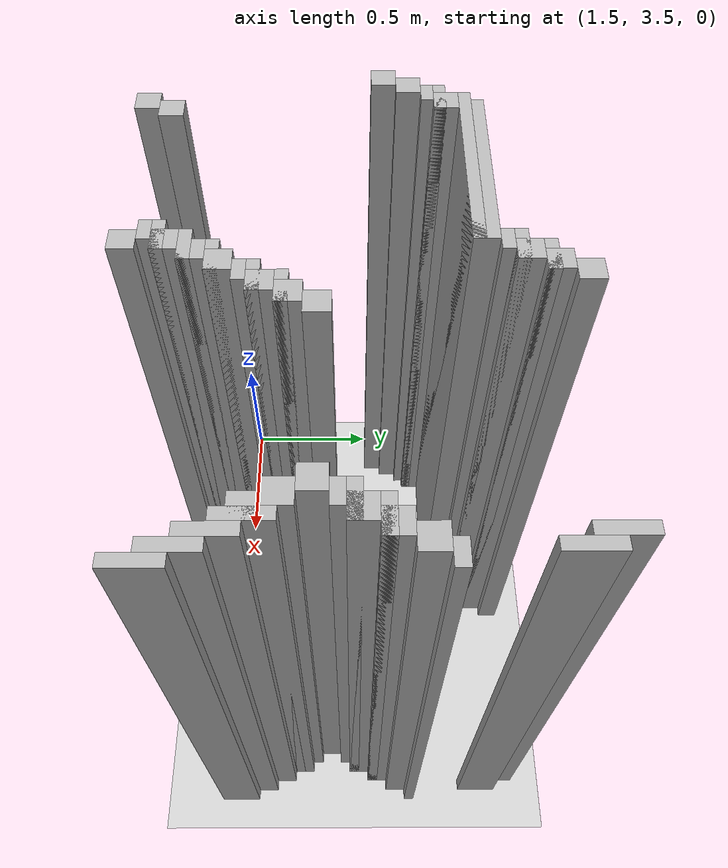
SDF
<sdf version="1.6">
 <world name="slam_world">
  <model name="ground_plane">
   <static>true</static>
   <link name="link">
    <collision name="collision">
     <geometry><plane><normal>0 0 1</normal><size>100 100</size></plane></geometry>
    </collision>
    <visual name="visual">
     <geometry><plane><normal>0 0 1</normal><size>100 100</size></plane></geometry>
     <material>
      <ambient>0.8 0.8 0.8 1</ambient>
      <diffuse>0.8 0.8 0.8 1</diffuse>
      <specular>0.8 0.8 0.8 1</specular>
     </material>
    </visual>
   </link>
  </model>
  <model name="wall_4282">
   <static>true</static>
   <pose>2.4013921113689096 4.524361948955916 1.0 0 0 0</pose>
   <link name="link">
    <collision name="collision">
     <geometry><box><size>0.06960556844547564 0.06960556844547564 2.0</size></box></geometry>
    </collision>
    <visual name="visual">
     <geometry><box><size>0.06960556844547564 0.06960556844547564 2.0</size></box></geometry>
     <material><ambient>0.5 0.5 0.5 1</ambient><diffuse>0.7 0.7 0.7 1</diffuse></material>
    </visual>
   </link>
  </model>
  <model name="wall_4283">
   <static>true</static>
   <pose>3.1148491879350346 4.489559164733178 1.0 0 0 0</pose>
   <link name="link">
    <collision name="collision">
     <geometry><box><size>0.03480278422273782 0.13921113689095127 2.0</size></box></geometry>
    </collision>
    <visual name="visual">
     <geometry><box><size>0.03480278422273782 0.13921113689095127 2.0</size></box></geometry>
     <material><ambient>0.5 0.5 0.5 1</ambient><diffuse>0.7 0.7 0.7 1</diffuse></material>
    </visual>
   </link>
  </model>
  <model name="wall_4293">
   <static>true</static>
   <pose>2.3665893271461718 4.454756380510441 1.0 0 0 0</pose>
   <link name="link">
    <collision name="collision">
     <geometry><box><size>0.06960556844547564 0.06960556844547564 2.0</size></box></geometry>
    </collision>
    <visual name="visual">
     <geometry><box><size>0.06960556844547564 0.06960556844547564 2.0</size></box></geometry>
     <material><ambient>0.5 0.5 0.5 1</ambient><diffuse>0.7 0.7 0.7 1</diffuse></material>
    </visual>
   </link>
  </model>
  <model name="wall_4294">
   <static>true</static>
   <pose>3.1496519721577725 4.419953596287703 1.0 0 0 0</pose>
   <link name="link">
    <collision name="collision">
     <geometry><box><size>0.03480278422273782 0.13921113689095127 2.0</size></box></geometry>
    </collision>
    <visual name="visual">
     <geometry><box><size>0.03480278422273782 0.13921113689095127 2.0</size></box></geometry>
     <material><ambient>0.5 0.5 0.5 1</ambient><diffuse>0.7 0.7 0.7 1</diffuse></material>
    </visual>
   </link>
  </model>
  <model name="wall_4304">
   <static>true</static>
   <pose>2.3491879350348026 4.437354988399072 1.0 0 0 0</pose>
   <link name="link">
    <collision name="collision">
     <geometry><box><size>0.10440835266821345 0.03480278422273782 2.0</size></box></geometry>
    </collision>
    <visual name="visual">
     <geometry><box><size>0.10440835266821345 0.03480278422273782 2.0</size></box></geometry>
     <material><ambient>0.5 0.5 0.5 1</ambient><diffuse>0.7 0.7 0.7 1</diffuse></material>
    </visual>
   </link>
  </model>
  <model name="wall_4314">
   <static>true</static>
   <pose>2.331786542923434 4.385150812064965 1.0 0 0 0</pose>
   <link name="link">
    <collision name="collision">
     <geometry><box><size>0.06960556844547564 0.06960556844547564 2.0</size></box></geometry>
    </collision>
    <visual name="visual">
     <geometry><box><size>0.06960556844547564 0.06960556844547564 2.0</size></box></geometry>
     <material><ambient>0.5 0.5 0.5 1</ambient><diffuse>0.7 0.7 0.7 1</diffuse></material>
    </visual>
   </link>
  </model>
  <model name="wall_4319">
   <static>true</static>
   <pose>2.3143851508120648 4.367749419953596 1.0 0 0 0</pose>
   <link name="link">
    <collision name="collision">
     <geometry><box><size>0.10440835266821345 0.03480278422273782 2.0</size></box></geometry>
    </collision>
    <visual name="visual">
     <geometry><box><size>0.10440835266821345 0.03480278422273782 2.0</size></box></geometry>
     <material><ambient>0.5 0.5 0.5 1</ambient><diffuse>0.7 0.7 0.7 1</diffuse></material>
    </visual>
   </link>
  </model>
  <model name="wall_4329">
   <static>true</static>
   <pose>2.296983758700696 4.332946635730858 1.0 0 0 0</pose>
   <link name="link">
    <collision name="collision">
     <geometry><box><size>0.06960556844547564 0.03480278422273782 2.0</size></box></geometry>
    </collision>
    <visual name="visual">
     <geometry><box><size>0.06960556844547564 0.03480278422273782 2.0</size></box></geometry>
     <material><ambient>0.5 0.5 0.5 1</ambient><diffuse>0.7 0.7 0.7 1</diffuse></material>
    </visual>
   </link>
  </model>
  <model name="wall_4335">
   <static>true</static>
   <pose>2.0185614849187936 4.280742459396752 1.0 0 0 0</pose>
   <link name="link">
    <collision name="collision">
     <geometry><box><size>0.5568445475638051 0.06960556844547564 2.0</size></box></geometry>
    </collision>
    <visual name="visual">
     <geometry><box><size>0.5568445475638051 0.06960556844547564 2.0</size></box></geometry>
     <material><ambient>0.5 0.5 0.5 1</ambient><diffuse>0.7 0.7 0.7 1</diffuse></material>
    </visual>
   </link>
  </model>
  <model name="wall_4347">
   <static>true</static>
   <pose>2.0011600928074245 4.263341067285383 1.0 0 0 0</pose>
   <link name="link">
    <collision name="collision">
     <geometry><box><size>0.5916473317865429 0.03480278422273782 2.0</size></box></geometry>
    </collision>
    <visual name="visual">
     <geometry><box><size>0.5916473317865429 0.03480278422273782 2.0</size></box></geometry>
     <material><ambient>0.5 0.5 0.5 1</ambient><diffuse>0.7 0.7 0.7 1</diffuse></material>
    </visual>
   </link>
  </model>
  <model name="wall_4359">
   <static>true</static>
   <pose>1.740139211136891 4.211136890951276 1.0 0 0 0</pose>
   <link name="link">
    <collision name="collision">
     <geometry><box><size>0.06960556844547564 0.06960556844547564 2.0</size></box></geometry>
    </collision>
    <visual name="visual">
     <geometry><box><size>0.06960556844547564 0.06960556844547564 2.0</size></box></geometry>
     <material><ambient>0.5 0.5 0.5 1</ambient><diffuse>0.7 0.7 0.7 1</diffuse></material>
    </visual>
   </link>
  </model>
  <model name="wall_4375">
   <static>true</static>
   <pose>1.722737819025522 4.193735498839907 1.0 0 0 0</pose>
   <link name="link">
    <collision name="collision">
     <geometry><box><size>0.10440835266821345 0.03480278422273782 2.0</size></box></geometry>
    </collision>
    <visual name="visual">
     <geometry><box><size>0.10440835266821345 0.03480278422273782 2.0</size></box></geometry>
     <material><ambient>0.5 0.5 0.5 1</ambient><diffuse>0.7 0.7 0.7 1</diffuse></material>
    </visual>
   </link>
  </model>
  <model name="wall_4390">
   <static>true</static>
   <pose>1.705336426914153 4.158932714617169 1.0 0 0 0</pose>
   <link name="link">
    <collision name="collision">
     <geometry><box><size>0.06960556844547564 0.03480278422273782 2.0</size></box></geometry>
    </collision>
    <visual name="visual">
     <geometry><box><size>0.06960556844547564 0.03480278422273782 2.0</size></box></geometry>
     <material><ambient>0.5 0.5 0.5 1</ambient><diffuse>0.7 0.7 0.7 1</diffuse></material>
    </visual>
   </link>
  </model>
  <model name="wall_4391">
   <static>true</static>
   <pose>3.167053364269141 4.158932714617169 1.0 0 0 0</pose>
   <link name="link">
    <collision name="collision">
     <geometry><box><size>0.06960556844547564 0.03480278422273782 2.0</size></box></geometry>
    </collision>
    <visual name="visual">
     <geometry><box><size>0.06960556844547564 0.03480278422273782 2.0</size></box></geometry>
     <material><ambient>0.5 0.5 0.5 1</ambient><diffuse>0.7 0.7 0.7 1</diffuse></material>
    </visual>
   </link>
  </model>
  <model name="wall_4404">
   <static>true</static>
   <pose>1.6705336426914152 4.106728538283062 1.0 0 0 0</pose>
   <link name="link">
    <collision name="collision">
     <geometry><box><size>0.06960556844547564 0.06960556844547564 2.0</size></box></geometry>
    </collision>
    <visual name="visual">
     <geometry><box><size>0.06960556844547564 0.06960556844547564 2.0</size></box></geometry>
     <material><ambient>0.5 0.5 0.5 1</ambient><diffuse>0.7 0.7 0.7 1</diffuse></material>
    </visual>
   </link>
  </model>
  <model name="wall_4405">
   <static>true</static>
   <pose>3.1322505800464038 4.106728538283062 1.0 0 0 0</pose>
   <link name="link">
    <collision name="collision">
     <geometry><box><size>0.06960556844547564 0.06960556844547564 2.0</size></box></geometry>
    </collision>
    <visual name="visual">
     <geometry><box><size>0.06960556844547564 0.06960556844547564 2.0</size></box></geometry>
     <material><ambient>0.5 0.5 0.5 1</ambient><diffuse>0.7 0.7 0.7 1</diffuse></material>
    </visual>
   </link>
  </model>
  <model name="wall_4420">
   <static>true</static>
   <pose>1.6357308584686774 4.037122969837587 1.0 0 0 0</pose>
   <link name="link">
    <collision name="collision">
     <geometry><box><size>0.06960556844547564 0.06960556844547564 2.0</size></box></geometry>
    </collision>
    <visual name="visual">
     <geometry><box><size>0.06960556844547564 0.06960556844547564 2.0</size></box></geometry>
     <material><ambient>0.5 0.5 0.5 1</ambient><diffuse>0.7 0.7 0.7 1</diffuse></material>
    </visual>
   </link>
  </model>
  <model name="wall_4421">
   <static>true</static>
   <pose>3.097447795823666 4.037122969837587 1.0 0 0 0</pose>
   <link name="link">
    <collision name="collision">
     <geometry><box><size>0.06960556844547564 0.06960556844547564 2.0</size></box></geometry>
    </collision>
    <visual name="visual">
     <geometry><box><size>0.06960556844547564 0.06960556844547564 2.0</size></box></geometry>
     <material><ambient>0.5 0.5 0.5 1</ambient><diffuse>0.7 0.7 0.7 1</diffuse></material>
    </visual>
   </link>
  </model>
  <model name="wall_4437">
   <static>true</static>
   <pose>3.0800464037122968 4.019721577726218 1.0 0 0 0</pose>
   <link name="link">
    <collision name="collision">
     <geometry><box><size>0.10440835266821345 0.03480278422273782 2.0</size></box></geometry>
    </collision>
    <visual name="visual">
     <geometry><box><size>0.10440835266821345 0.03480278422273782 2.0</size></box></geometry>
     <material><ambient>0.5 0.5 0.5 1</ambient><diffuse>0.7 0.7 0.7 1</diffuse></material>
    </visual>
   </link>
  </model>
  <model name="wall_4452">
   <static>true</static>
   <pose>3.062645011600928 3.967517401392111 1.0 0 0 0</pose>
   <link name="link">
    <collision name="collision">
     <geometry><box><size>0.06960556844547564 0.06960556844547564 2.0</size></box></geometry>
    </collision>
    <visual name="visual">
     <geometry><box><size>0.06960556844547564 0.06960556844547564 2.0</size></box></geometry>
     <material><ambient>0.5 0.5 0.5 1</ambient><diffuse>0.7 0.7 0.7 1</diffuse></material>
    </visual>
   </link>
  </model>
  <model name="wall_4462">
   <static>true</static>
   <pose>3.045243619489559 3.9501160092807424 1.0 0 0 0</pose>
   <link name="link">
    <collision name="collision">
     <geometry><box><size>0.10440835266821345 0.03480278422273782 2.0</size></box></geometry>
    </collision>
    <visual name="visual">
     <geometry><box><size>0.10440835266821345 0.03480278422273782 2.0</size></box></geometry>
     <material><ambient>0.5 0.5 0.5 1</ambient><diffuse>0.7 0.7 0.7 1</diffuse></material>
    </visual>
   </link>
  </model>
  <model name="wall_4477">
   <static>true</static>
   <pose>3.02784222737819 3.9153132250580045 1.0 0 0 0</pose>
   <link name="link">
    <collision name="collision">
     <geometry><box><size>0.06960556844547564 0.03480278422273782 2.0</size></box></geometry>
    </collision>
    <visual name="visual">
     <geometry><box><size>0.06960556844547564 0.03480278422273782 2.0</size></box></geometry>
     <material><ambient>0.5 0.5 0.5 1</ambient><diffuse>0.7 0.7 0.7 1</diffuse></material>
    </visual>
   </link>
  </model>
  <model name="wall_4486">
   <static>true</static>
   <pose>2.5058004640371228 3.863109048723898 1.0 0 0 0</pose>
   <link name="link">
    <collision name="collision">
     <geometry><box><size>0.06960556844547564 0.06960556844547564 2.0</size></box></geometry>
    </collision>
    <visual name="visual">
     <geometry><box><size>0.06960556844547564 0.06960556844547564 2.0</size></box></geometry>
     <material><ambient>0.5 0.5 0.5 1</ambient><diffuse>0.7 0.7 0.7 1</diffuse></material>
    </visual>
   </link>
  </model>
  <model name="wall_4487">
   <static>true</static>
   <pose>2.9930394431554523 3.863109048723898 1.0 0 0 0</pose>
   <link name="link">
    <collision name="collision">
     <geometry><box><size>0.06960556844547564 0.06960556844547564 2.0</size></box></geometry>
    </collision>
    <visual name="visual">
     <geometry><box><size>0.06960556844547564 0.06960556844547564 2.0</size></box></geometry>
     <material><ambient>0.5 0.5 0.5 1</ambient><diffuse>0.7 0.7 0.7 1</diffuse></material>
    </visual>
   </link>
  </model>
  <model name="wall_4501">
   <static>true</static>
   <pose>2.470997679814385 3.793503480278422 1.0 0 0 0</pose>
   <link name="link">
    <collision name="collision">
     <geometry><box><size>0.06960556844547564 0.06960556844547564 2.0</size></box></geometry>
    </collision>
    <visual name="visual">
     <geometry><box><size>0.06960556844547564 0.06960556844547564 2.0</size></box></geometry>
     <material><ambient>0.5 0.5 0.5 1</ambient><diffuse>0.7 0.7 0.7 1</diffuse></material>
    </visual>
   </link>
  </model>
  <model name="wall_4502">
   <static>true</static>
   <pose>3.02784222737819 3.793503480278422 1.0 0 0 0</pose>
   <link name="link">
    <collision name="collision">
     <geometry><box><size>0.06960556844547564 0.06960556844547564 2.0</size></box></geometry>
    </collision>
    <visual name="visual">
     <geometry><box><size>0.06960556844547564 0.06960556844547564 2.0</size></box></geometry>
     <material><ambient>0.5 0.5 0.5 1</ambient><diffuse>0.7 0.7 0.7 1</diffuse></material>
    </visual>
   </link>
  </model>
  <model name="wall_4512">
   <static>true</static>
   <pose>2.453596287703016 3.776102088167053 1.0 0 0 0</pose>
   <link name="link">
    <collision name="collision">
     <geometry><box><size>0.10440835266821345 0.03480278422273782 2.0</size></box></geometry>
    </collision>
    <visual name="visual">
     <geometry><box><size>0.10440835266821345 0.03480278422273782 2.0</size></box></geometry>
     <material><ambient>0.5 0.5 0.5 1</ambient><diffuse>0.7 0.7 0.7 1</diffuse></material>
    </visual>
   </link>
  </model>
  <model name="wall_4513">
   <static>true</static>
   <pose>3.0800464037122968 3.7238979118329465 1.0 0 0 0</pose>
   <link name="link">
    <collision name="collision">
     <geometry><box><size>0.03480278422273782 0.13921113689095127 2.0</size></box></geometry>
    </collision>
    <visual name="visual">
     <geometry><box><size>0.03480278422273782 0.13921113689095127 2.0</size></box></geometry>
     <material><ambient>0.5 0.5 0.5 1</ambient><diffuse>0.7 0.7 0.7 1</diffuse></material>
    </visual>
   </link>
  </model>
  <model name="wall_4523">
   <static>true</static>
   <pose>2.436194895591647 3.7238979118329465 1.0 0 0 0</pose>
   <link name="link">
    <collision name="collision">
     <geometry><box><size>0.06960556844547564 0.06960556844547564 2.0</size></box></geometry>
    </collision>
    <visual name="visual">
     <geometry><box><size>0.06960556844547564 0.06960556844547564 2.0</size></box></geometry>
     <material><ambient>0.5 0.5 0.5 1</ambient><diffuse>0.7 0.7 0.7 1</diffuse></material>
    </visual>
   </link>
  </model>
  <model name="wall_4524">
   <static>true</static>
   <pose>3.062645011600928 3.7238979118329465 1.0 0 0 0</pose>
   <link name="link">
    <collision name="collision">
     <geometry><box><size>0.06960556844547564 0.06960556844547564 2.0</size></box></geometry>
    </collision>
    <visual name="visual">
     <geometry><box><size>0.06960556844547564 0.06960556844547564 2.0</size></box></geometry>
     <material><ambient>0.5 0.5 0.5 1</ambient><diffuse>0.7 0.7 0.7 1</diffuse></material>
    </visual>
   </link>
  </model>
  <model name="wall_4534">
   <static>true</static>
   <pose>2.4187935034802783 3.706496519721578 1.0 0 0 0</pose>
   <link name="link">
    <collision name="collision">
     <geometry><box><size>0.10440835266821345 0.03480278422273782 2.0</size></box></geometry>
    </collision>
    <visual name="visual">
     <geometry><box><size>0.10440835266821345 0.03480278422273782 2.0</size></box></geometry>
     <material><ambient>0.5 0.5 0.5 1</ambient><diffuse>0.7 0.7 0.7 1</diffuse></material>
    </visual>
   </link>
  </model>
  <model name="wall_4535">
   <static>true</static>
   <pose>3.1148491879350346 3.6542923433874708 1.0 0 0 0</pose>
   <link name="link">
    <collision name="collision">
     <geometry><box><size>0.03480278422273782 0.13921113689095127 2.0</size></box></geometry>
    </collision>
    <visual name="visual">
     <geometry><box><size>0.03480278422273782 0.13921113689095127 2.0</size></box></geometry>
     <material><ambient>0.5 0.5 0.5 1</ambient><diffuse>0.7 0.7 0.7 1</diffuse></material>
    </visual>
   </link>
  </model>
  <model name="wall_4544">
   <static>true</static>
   <pose>2.4013921113689096 3.67169373549884 1.0 0 0 0</pose>
   <link name="link">
    <collision name="collision">
     <geometry><box><size>0.06960556844547564 0.03480278422273782 2.0</size></box></geometry>
    </collision>
    <visual name="visual">
     <geometry><box><size>0.06960556844547564 0.03480278422273782 2.0</size></box></geometry>
     <material><ambient>0.5 0.5 0.5 1</ambient><diffuse>0.7 0.7 0.7 1</diffuse></material>
    </visual>
   </link>
  </model>
  <model name="wall_4549">
   <static>true</static>
   <pose>2.3665893271461718 3.619489559164733 1.0 0 0 0</pose>
   <link name="link">
    <collision name="collision">
     <geometry><box><size>0.06960556844547564 0.06960556844547564 2.0</size></box></geometry>
    </collision>
    <visual name="visual">
     <geometry><box><size>0.06960556844547564 0.06960556844547564 2.0</size></box></geometry>
     <material><ambient>0.5 0.5 0.5 1</ambient><diffuse>0.7 0.7 0.7 1</diffuse></material>
    </visual>
   </link>
  </model>
  <model name="wall_4550">
   <static>true</static>
   <pose>3.1496519721577725 3.584686774941995 1.0 0 0 0</pose>
   <link name="link">
    <collision name="collision">
     <geometry><box><size>0.03480278422273782 0.13921113689095127 2.0</size></box></geometry>
    </collision>
    <visual name="visual">
     <geometry><box><size>0.03480278422273782 0.13921113689095127 2.0</size></box></geometry>
     <material><ambient>0.5 0.5 0.5 1</ambient><diffuse>0.7 0.7 0.7 1</diffuse></material>
    </visual>
   </link>
  </model>
  <model name="wall_4559">
   <static>true</static>
   <pose>2.3491879350348026 3.602088167053364 1.0 0 0 0</pose>
   <link name="link">
    <collision name="collision">
     <geometry><box><size>0.10440835266821345 0.03480278422273782 2.0</size></box></geometry>
    </collision>
    <visual name="visual">
     <geometry><box><size>0.10440835266821345 0.03480278422273782 2.0</size></box></geometry>
     <material><ambient>0.5 0.5 0.5 1</ambient><diffuse>0.7 0.7 0.7 1</diffuse></material>
    </visual>
   </link>
  </model>
  <model name="wall_4564">
   <static>true</static>
   <pose>2.331786542923434 3.549883990719257 1.0 0 0 0</pose>
   <link name="link">
    <collision name="collision">
     <geometry><box><size>0.06960556844547564 0.06960556844547564 2.0</size></box></geometry>
    </collision>
    <visual name="visual">
     <geometry><box><size>0.06960556844547564 0.06960556844547564 2.0</size></box></geometry>
     <material><ambient>0.5 0.5 0.5 1</ambient><diffuse>0.7 0.7 0.7 1</diffuse></material>
    </visual>
   </link>
  </model>
  <model name="wall_4565">
   <static>true</static>
   <pose>3.1844547563805103 3.51508120649652 1.0 0 0 0</pose>
   <link name="link">
    <collision name="collision">
     <geometry><box><size>0.03480278422273782 0.13921113689095127 2.0</size></box></geometry>
    </collision>
    <visual name="visual">
     <geometry><box><size>0.03480278422273782 0.13921113689095127 2.0</size></box></geometry>
     <material><ambient>0.5 0.5 0.5 1</ambient><diffuse>0.7 0.7 0.7 1</diffuse></material>
    </visual>
   </link>
  </model>
  <model name="wall_4575">
   <static>true</static>
   <pose>2.3143851508120648 3.5324825986078885 1.0 0 0 0</pose>
   <link name="link">
    <collision name="collision">
     <geometry><box><size>0.10440835266821345 0.03480278422273782 2.0</size></box></geometry>
    </collision>
    <visual name="visual">
     <geometry><box><size>0.10440835266821345 0.03480278422273782 2.0</size></box></geometry>
     <material><ambient>0.5 0.5 0.5 1</ambient><diffuse>0.7 0.7 0.7 1</diffuse></material>
    </visual>
   </link>
  </model>
  <model name="wall_4585">
   <static>true</static>
   <pose>2.296983758700696 3.480278422273782 1.0 0 0 0</pose>
   <link name="link">
    <collision name="collision">
     <geometry><box><size>0.06960556844547564 0.06960556844547564 2.0</size></box></geometry>
    </collision>
    <visual name="visual">
     <geometry><box><size>0.06960556844547564 0.06960556844547564 2.0</size></box></geometry>
     <material><ambient>0.5 0.5 0.5 1</ambient><diffuse>0.7 0.7 0.7 1</diffuse></material>
    </visual>
   </link>
  </model>
  <model name="wall_4590">
   <static>true</static>
   <pose>1.7749419953596286 3.445475638051044 1.0 0 0 0</pose>
   <link name="link">
    <collision name="collision">
     <geometry><box><size>0.06960556844547564 0.06960556844547564 2.0</size></box></geometry>
    </collision>
    <visual name="visual">
     <geometry><box><size>0.06960556844547564 0.06960556844547564 2.0</size></box></geometry>
     <material><ambient>0.5 0.5 0.5 1</ambient><diffuse>0.7 0.7 0.7 1</diffuse></material>
    </visual>
   </link>
  </model>
  <model name="wall_4591">
   <static>true</static>
   <pose>2.279582366589327 3.4628770301624128 1.0 0 0 0</pose>
   <link name="link">
    <collision name="collision">
     <geometry><box><size>0.10440835266821345 0.03480278422273782 2.0</size></box></geometry>
    </collision>
    <visual name="visual">
     <geometry><box><size>0.10440835266821345 0.03480278422273782 2.0</size></box></geometry>
     <material><ambient>0.5 0.5 0.5 1</ambient><diffuse>0.7 0.7 0.7 1</diffuse></material>
    </visual>
   </link>
  </model>
  <model name="wall_4604">
   <static>true</static>
   <pose>2.262180974477958 3.428074245939675 1.0 0 0 0</pose>
   <link name="link">
    <collision name="collision">
     <geometry><box><size>0.06960556844547564 0.03480278422273782 2.0</size></box></geometry>
    </collision>
    <visual name="visual">
     <geometry><box><size>0.06960556844547564 0.03480278422273782 2.0</size></box></geometry>
     <material><ambient>0.5 0.5 0.5 1</ambient><diffuse>0.7 0.7 0.7 1</diffuse></material>
    </visual>
   </link>
  </model>
  <model name="wall_4610">
   <static>true</static>
   <pose>1.740139211136891 3.3758700696055683 1.0 0 0 0</pose>
   <link name="link">
    <collision name="collision">
     <geometry><box><size>0.06960556844547564 0.06960556844547564 2.0</size></box></geometry>
    </collision>
    <visual name="visual">
     <geometry><box><size>0.06960556844547564 0.06960556844547564 2.0</size></box></geometry>
     <material><ambient>0.5 0.5 0.5 1</ambient><diffuse>0.7 0.7 0.7 1</diffuse></material>
    </visual>
   </link>
  </model>
  <model name="wall_4611">
   <static>true</static>
   <pose>2.296983758700696 3.3758700696055683 1.0 0 0 0</pose>
   <link name="link">
    <collision name="collision">
     <geometry><box><size>0.06960556844547564 0.06960556844547564 2.0</size></box></geometry>
    </collision>
    <visual name="visual">
     <geometry><box><size>0.06960556844547564 0.06960556844547564 2.0</size></box></geometry>
     <material><ambient>0.5 0.5 0.5 1</ambient><diffuse>0.7 0.7 0.7 1</diffuse></material>
    </visual>
   </link>
  </model>
 </world>
</sdf>
